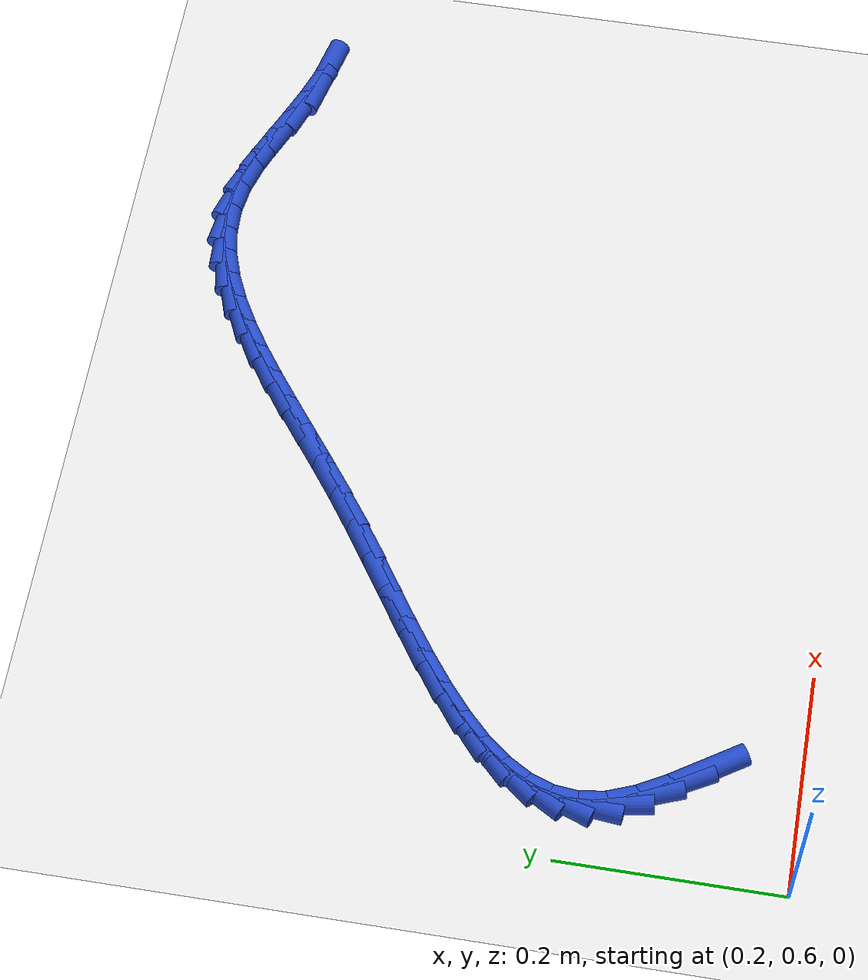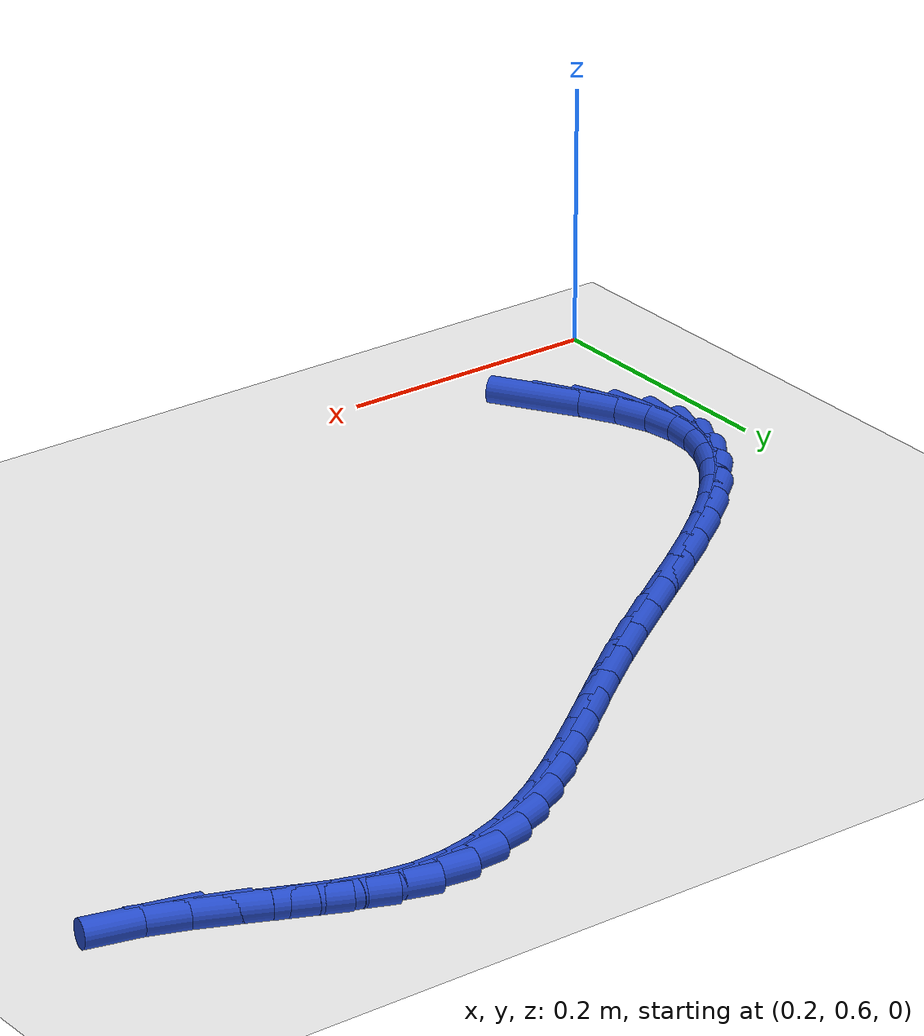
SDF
<sdf version="1.6">
 <world name="default">
  <model name="ground_plane">
   <static>1</static>
   <link name="link">
    <collision name="collision">
     <geometry><plane><normal>0 0 1</normal><size>100 100</size></plane></geometry>
     <surface><friction><ode><mu>100</mu><mu2>50</mu2></ode></friction></surface>
    </collision>
    <visual name="visual">
     <cast_shadows>0</cast_shadows>
     <geometry><plane><normal>0 0 1</normal><size>100 100</size></plane></geometry>
     <material>
      <script><uri>file://media/materials/scripts/gazebo.material</uri><name>Gazebo/WhiteGlow</name></script>
     </material>
    </visual>
   </link>
  </model>
  <model name="line">
   <link name="link_29">
    <pose>0.2952054551935364 0.6836891313275839 0.01 0 1.57 -1.0029031472028256</pose>
    <collision name="collision">
     <geometry><cylinder><radius>0.01</radius><length>0.08</length></cylinder></geometry>
    </collision>
    <visual name="visual">
     <material>
      <script><name>Gazebo/Blue</name><uri>file://media/materials/scripts/gazebo.material</uri></script>
     </material>
     <geometry><cylinder><radius>0.01</radius><length>0.08</length></cylinder></geometry>
    </visual>
   </link>
   <link name="link_30">
    <pose>0.27845631709931545 0.7099416919647864 0.01 0 1.57 -1.0737586363526332</pose>
    <collision name="collision">
     <geometry><cylinder><radius>0.01</radius><length>0.08</length></cylinder></geometry>
    </collision>
    <visual name="visual">
     <material>
      <script><name>Gazebo/Blue</name><uri>file://media/materials/scripts/gazebo.material</uri></script>
     </material>
     <geometry><cylinder><radius>0.01</radius><length>0.08</length></cylinder></geometry>
    </visual>
   </link>
   <link name="link_31">
    <pose>0.2644150480572868 0.735826014657425 0.01 0 1.57 -1.2051331066957656</pose>
    <collision name="collision">
     <geometry><cylinder><radius>0.01</radius><length>0.08</length></cylinder></geometry>
    </collision>
    <visual name="visual">
     <material>
      <script><name>Gazebo/Blue</name><uri>file://media/materials/scripts/gazebo.material</uri></script>
     </material>
     <geometry><cylinder><radius>0.01</radius><length>0.08</length></cylinder></geometry>
    </visual>
   </link>
   <link name="link_32">
    <pose>0.2547591522334305 0.7610449801141108 0.01 0 1.57 -1.417647684400381</pose>
    <collision name="collision">
     <geometry><cylinder><radius>0.01</radius><length>0.08</length></cylinder></geometry>
    </collision>
    <visual name="visual">
     <material>
      <script><name>Gazebo/Blue</name><uri>file://media/materials/scripts/gazebo.material</uri></script>
     </material>
     <geometry><cylinder><radius>0.01</radius><length>0.08</length></cylinder></geometry>
    </visual>
   </link>
   <link name="link_33">
    <pose>0.2510105877549419 0.7853299596103389 0.01 0 1.57 1.4728865628770562</pose>
    <collision name="collision">
     <geometry><cylinder><radius>0.01</radius><length>0.08</length></cylinder></geometry>
    </collision>
    <visual name="visual">
     <material>
      <script><name>Gazebo/Blue</name><uri>file://media/materials/scripts/gazebo.material</uri></script>
     </material>
     <geometry><cylinder><radius>0.01</radius><length>0.08</length></cylinder></geometry>
    </visual>
   </link>
   <link name="link_34">
    <pose>0.2533028069257572 0.808666649882633 0.01 0 1.57 1.2397201899270875</pose>
    <collision name="collision">
     <geometry><cylinder><radius>0.01</radius><length>0.08</length></cylinder></geometry>
    </collision>
    <visual name="visual">
     <material>
      <script><name>Gazebo/Blue</name><uri>file://media/materials/scripts/gazebo.material</uri></script>
     </material>
     <geometry><cylinder><radius>0.01</radius><length>0.08</length></cylinder></geometry>
    </visual>
   </link>
   <link name="link_35">
    <pose>0.26103935809138784 0.8311744404166769 0.01 0 1.57 1.047472549642019</pose>
    <collision name="collision">
     <geometry><cylinder><radius>0.01</radius><length>0.08</length></cylinder></geometry>
    </collision>
    <visual name="visual">
     <material>
      <script><name>Gazebo/Blue</name><uri>file://media/materials/scripts/gazebo.material</uri></script>
     </material>
     <geometry><cylinder><radius>0.01</radius><length>0.08</length></cylinder></geometry>
    </visual>
   </link>
   <link name="link_36">
    <pose>0.27361729595879836 0.8529739101044843 0.01 0 1.57 0.900469135109178</pose>
    <collision name="collision">
     <geometry><cylinder><radius>0.01</radius><length>0.08</length></cylinder></geometry>
    </collision>
    <visual name="visual">
     <material>
      <script><name>Gazebo/Blue</name><uri>file://media/materials/scripts/gazebo.material</uri></script>
     </material>
     <geometry><cylinder><radius>0.01</radius><length>0.08</length></cylinder></geometry>
    </visual>
   </link>
   <link name="link_37">
    <pose>0.29043367523495317 0.8741856378380694 0.01 0 1.57 0.792502766477532</pose>
    <collision name="collision">
     <geometry><cylinder><radius>0.01</radius><length>0.08</length></cylinder></geometry>
    </collision>
    <visual name="visual">
     <material>
      <script><name>Gazebo/Blue</name><uri>file://media/materials/scripts/gazebo.material</uri></script>
     </material>
     <geometry><cylinder><radius>0.01</radius><length>0.08</length></cylinder></geometry>
    </visual>
   </link>
   <link name="link_38">
    <pose>0.3108855506268169 0.8949302025094461 0.01 0 1.57 0.7151793328294161</pose>
    <collision name="collision">
     <geometry><cylinder><radius>0.01</radius><length>0.08</length></cylinder></geometry>
    </collision>
    <visual name="visual">
     <material>
      <script><name>Gazebo/Blue</name><uri>file://media/materials/scripts/gazebo.material</uri></script>
     </material>
     <geometry><cylinder><radius>0.01</radius><length>0.08</length></cylinder></geometry>
    </visual>
   </link>
   <link name="link_39">
    <pose>0.334369976841354 0.9153281830106287 0.01 0 1.57 0.6614425886220949</pose>
    <collision name="collision">
     <geometry><cylinder><radius>0.01</radius><length>0.08</length></cylinder></geometry>
    </collision>
    <visual name="visual">
     <material>
      <script><name>Gazebo/Blue</name><uri>file://media/materials/scripts/gazebo.material</uri></script>
     </material>
     <geometry><cylinder><radius>0.01</radius><length>0.08</length></cylinder></geometry>
    </visual>
   </link>
   <link name="link_40">
    <pose>0.36028400858552884 0.9355001582336313 0.01 0 1.57 0.6262333762164071</pose>
    <collision name="collision">
     <geometry><cylinder><radius>0.01</radius><length>0.08</length></cylinder></geometry>
    </collision>
    <visual name="visual">
     <material>
      <script><name>Gazebo/Blue</name><uri>file://media/materials/scripts/gazebo.material</uri></script>
     </material>
     <geometry><cylinder><radius>0.01</radius><length>0.08</length></cylinder></geometry>
    </visual>
   </link>
   <link name="link_41">
    <pose>0.38802470056630634 0.955566707070468 0.01 0 1.57 0.6062309616112145</pose>
    <collision name="collision">
     <geometry><cylinder><radius>0.01</radius><length>0.08</length></cylinder></geometry>
    </collision>
    <visual name="visual">
     <material>
      <script><name>Gazebo/Blue</name><uri>file://media/materials/scripts/gazebo.material</uri></script>
     </material>
     <geometry><cylinder><radius>0.01</radius><length>0.08</length></cylinder></geometry>
    </visual>
   </link>
   <link name="link_42">
    <pose>0.4169891074906508 0.9756484084131528 0.01 0 1.57 0.5994731163087782</pose>
    <collision name="collision">
     <geometry><cylinder><radius>0.01</radius><length>0.08</length></cylinder></geometry>
    </collision>
    <visual name="visual">
     <material>
      <script><name>Gazebo/Blue</name><uri>file://media/materials/scripts/gazebo.material</uri></script>
     </material>
     <geometry><cylinder><radius>0.01</radius><length>0.08</length></cylinder></geometry>
    </visual>
   </link>
   <link name="link_43">
    <pose>0.4465742840655268 0.9958658411537 0.01 0 1.57 0.6050731336399192</pose>
    <collision name="collision">
     <geometry><cylinder><radius>0.01</radius><length>0.08</length></cylinder></geometry>
    </collision>
    <visual name="visual">
     <material>
      <script><name>Gazebo/Blue</name><uri>file://media/materials/scripts/gazebo.material</uri></script>
     </material>
     <geometry><cylinder><radius>0.01</radius><length>0.08</length></cylinder></geometry>
    </visual>
   </link>
   <link name="link_44">
    <pose>0.4761772849978988 1.0163395841841234 0.01 0 1.57 0.6230512626197703</pose>
    <collision name="collision">
     <geometry><cylinder><radius>0.01</radius><length>0.08</length></cylinder></geometry>
    </collision>
    <visual name="visual">
     <material>
      <script><name>Gazebo/Blue</name><uri>file://media/materials/scripts/gazebo.material</uri></script>
     </material>
     <geometry><cylinder><radius>0.01</radius><length>0.08</length></cylinder></geometry>
    </visual>
   </link>
   <link name="link_45">
    <pose>0.5051955370347525 1.037189937215831 0.01 0 1.57 0.6479190353864179</pose>
    <collision name="collision">
     <geometry><cylinder><radius>0.01</radius><length>0.08</length></cylinder></geometry>
    </collision>
    <visual name="visual">
     <material>
      <script><name>Gazebo/Blue</name><uri>file://media/materials/scripts/gazebo.material</uri></script>
     </material>
     <geometry><cylinder><radius>0.01</radius><length>0.08</length></cylinder></geometry>
    </visual>
   </link>
   <link name="link_46">
    <pose>0.5332130936363997 1.0583971543844672 0.01 0 1.57 0.6635186357237746</pose>
    <collision name="collision">
     <geometry><cylinder><radius>0.01</radius><length>0.08</length></cylinder></geometry>
    </collision>
    <visual name="visual">
     <material>
      <script><name>Gazebo/Blue</name><uri>file://media/materials/scripts/gazebo.material</uri></script>
     </material>
     <geometry><cylinder><radius>0.01</radius><length>0.08</length></cylinder></geometry>
    </visual>
   </link>
   <link name="link_47">
    <pose>0.5603027593396834 1.0795747286868362 0.01 0 1.57 0.6666066748385984</pose>
    <collision name="collision">
     <geometry><cylinder><radius>0.01</radius><length>0.08</length></cylinder></geometry>
    </collision>
    <visual name="visual">
     <material>
      <script><name>Gazebo/Blue</name><uri>file://media/materials/scripts/gazebo.material</uri></script>
     </material>
     <geometry><cylinder><radius>0.01</radius><length>0.08</length></cylinder></geometry>
    </visual>
   </link>
   <link name="link_48">
    <pose>0.5866163682679847 1.100276848941085 0.01 0 1.57 0.6561793922529283</pose>
    <collision name="collision">
     <geometry><cylinder><radius>0.01</radius><length>0.08</length></cylinder></geometry>
    </collision>
    <visual name="visual">
     <material>
      <script><name>Gazebo/Blue</name><uri>file://media/materials/scripts/gazebo.material</uri></script>
     </material>
     <geometry><cylinder><radius>0.01</radius><length>0.08</length></cylinder></geometry>
    </visual>
   </link>
   <link name="link_49">
    <pose>0.6123057545446843 1.1200577039653603 0.01 0 1.57 0.6307166704881026</pose>
    <collision name="collision">
     <geometry><cylinder><radius>0.01</radius><length>0.08</length></cylinder></geometry>
    </collision>
    <visual name="visual">
     <material>
      <script><name>Gazebo/Blue</name><uri>file://media/materials/scripts/gazebo.material</uri></script>
     </material>
     <geometry><cylinder><radius>0.01</radius><length>0.08</length></cylinder></geometry>
    </visual>
   </link>
   <link name="link_50">
    <pose>0.6375227522931634 1.13847148257781 0.01 0 1.57 0.5880933095271511</pose>
    <collision name="collision">
     <geometry><cylinder><radius>0.01</radius><length>0.08</length></cylinder></geometry>
    </collision>
    <visual name="visual">
     <material>
      <script><name>Gazebo/Blue</name><uri>file://media/materials/scripts/gazebo.material</uri></script>
     </material>
     <geometry><cylinder><radius>0.01</radius><length>0.08</length></cylinder></geometry>
    </visual>
   </link>
   <link name="link_51">
    <pose>0.6624191956368031 1.1550723735965815 0.01 0 1.57 0.5255872089880135</pose>
    <collision name="collision">
     <geometry><cylinder><radius>0.01</radius><length>0.08</length></cylinder></geometry>
    </collision>
    <visual name="visual">
     <material>
      <script><name>Gazebo/Blue</name><uri>file://media/materials/scripts/gazebo.material</uri></script>
     </material>
     <geometry><cylinder><radius>0.01</radius><length>0.08</length></cylinder></geometry>
    </visual>
   </link>
   <link name="link_52">
    <pose>0.6871469186989846 1.1694145658398227 0.01 0 1.57 0.4401424813250403</pose>
    <collision name="collision">
     <geometry><cylinder><radius>0.01</radius><length>0.08</length></cylinder></geometry>
    </collision>
    <visual name="visual">
     <material>
      <script><name>Gazebo/Blue</name><uri>file://media/materials/scripts/gazebo.material</uri></script>
     </material>
     <geometry><cylinder><radius>0.01</radius><length>0.08</length></cylinder></geometry>
    </visual>
   </link>
   <link name="link_53">
    <pose>0.711857755603089 1.18105224812568 0.01 0 1.57 0.32917349159626663</pose>
    <collision name="collision">
     <geometry><cylinder><radius>0.01</radius><length>0.08</length></cylinder></geometry>
    </collision>
    <visual name="visual">
     <material>
      <script><name>Gazebo/Blue</name><uri>file://media/materials/scripts/gazebo.material</uri></script>
     </material>
     <geometry><cylinder><radius>0.01</radius><length>0.08</length></cylinder></geometry>
    </visual>
   </link>
   <link name="link_54">
    <pose>0.736703540472497 1.1895396092723014 0.01 0 1.57 0.19221443596110152</pose>
    <collision name="collision">
     <geometry><cylinder><radius>0.01</radius><length>0.08</length></cylinder></geometry>
    </collision>
    <visual name="visual">
     <material>
      <script><name>Gazebo/Blue</name><uri>file://media/materials/scripts/gazebo.material</uri></script>
     </material>
     <geometry><cylinder><radius>0.01</radius><length>0.08</length></cylinder></geometry>
    </visual>
   </link>
   <link name="link_55">
    <pose>0.7618361074305899 1.194430838097834 0.01 0 1.57 0.033200389983007776</pose>
    <collision name="collision">
     <geometry><cylinder><radius>0.01</radius><length>0.08</length></cylinder></geometry>
    </collision>
    <visual name="visual">
     <material>
      <script><name>Gazebo/Blue</name><uri>file://media/materials/scripts/gazebo.material</uri></script>
     </material>
     <geometry><cylinder><radius>0.01</radius><length>0.08</length></cylinder></geometry>
    </visual>
   </link>
   <link name="link_56">
    <pose>0.787407290600749 1.1952801234204251 0.01 0 1.57 -0.13815578577038984</pose>
    <collision name="collision">
     <geometry><cylinder><radius>0.01</radius><length>0.08</length></cylinder></geometry>
    </collision>
    <visual name="visual">
     <material>
      <script><name>Gazebo/Blue</name><uri>file://media/materials/scripts/gazebo.material</uri></script>
     </material>
     <geometry><cylinder><radius>0.01</radius><length>0.08</length></cylinder></geometry>
    </visual>
   </link>
   <link name="link_57">
    <pose>0.8135687762851693 1.1916425900808707 0.01 0 1.57 -0.2917829945881949</pose>
    <collision name="collision">
     <geometry><cylinder><radius>0.01</radius><length>0.08</length></cylinder></geometry>
    </collision>
    <visual name="visual">
     <material>
      <script><name>Gazebo/Blue</name><uri>file://media/materials/scripts/gazebo.material</uri></script>
     </material>
     <geometry><cylinder><radius>0.01</radius><length>0.08</length></cylinder></geometry>
    </visual>
   </link>
   <link name="link_58">
    <pose>0.8403912433967284 1.1835863120677006 0.01 0 1.57 -0.3839586581489926</pose>
    <collision name="collision">
     <geometry><cylinder><radius>0.01</radius><length>0.08</length></cylinder></geometry>
    </collision>
    <visual name="visual">
     <material>
      <script><name>Gazebo/Blue</name><uri>file://media/materials/scripts/gazebo.material</uri></script>
     </material>
     <geometry><cylinder><radius>0.01</radius><length>0.08</length></cylinder></geometry>
    </visual>
   </link>
   <link name="link_59">
    <pose>0.867730327855679 1.1725410430966854 0.01 0 1.57 -0.4206540215104794</pose>
    <collision name="collision">
     <geometry><cylinder><radius>0.01</radius><length>0.08</length></cylinder></geometry>
    </collision>
    <visual name="visual">
     <material>
      <script><name>Gazebo/Blue</name><uri>file://media/materials/scripts/gazebo.material</uri></script>
     </material>
     <geometry><cylinder><radius>0.01</radius><length>0.08</length></cylinder></geometry>
    </visual>
   </link>
   <link name="link_60">
    <pose>0.8954063814508796 1.160159960515433 0.01 0 1.57 -0.40898616554600187</pose>
    <collision name="collision">
     <geometry><cylinder><radius>0.01</radius><length>0.08</length></cylinder></geometry>
    </collision>
    <visual name="visual">
     <material>
      <script><name>Gazebo/Blue</name><uri>file://media/materials/scripts/gazebo.material</uri></script>
     </material>
     <geometry><cylinder><radius>0.01</radius><length>0.08</length></cylinder></geometry>
    </visual>
   </link>
   <link name="link_61">
    <pose>0.9232397559711888 1.1480962416715523 0.01 0 1.57 -0.3481379189393007</pose>
    <collision name="collision">
     <geometry><cylinder><radius>0.01</radius><length>0.08</length></cylinder></geometry>
    </collision>
    <visual name="visual">
     <material>
      <script><name>Gazebo/Blue</name><uri>file://media/materials/scripts/gazebo.material</uri></script>
     </material>
     <geometry><cylinder><radius>0.01</radius><length>0.08</length></cylinder></geometry>
    </visual>
   </link>
   <link name="link_62">
    <pose>0.9510508032054658 1.1380030639126522 0.01 0 1.57 -0.2301709402388039</pose>
    <collision name="collision">
     <geometry><cylinder><radius>0.01</radius><length>0.08</length></cylinder></geometry>
    </collision>
    <visual name="visual">
     <material>
      <script><name>Gazebo/Blue</name><uri>file://media/materials/scripts/gazebo.material</uri></script>
     </material>
     <geometry><cylinder><radius>0.01</radius><length>0.08</length></cylinder></geometry>
    </visual>
   </link>
  </model>
 </world>
</sdf>
